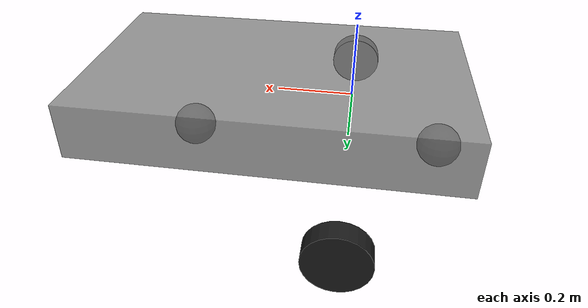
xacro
<?xml version="1.0"?>
<robot xmlns:xacro="http://www.ros.org/wiki/xacro" name="agv">

  <!-- Calibrated parameters (2026-04-08). Do not change without re-measuring. -->
  <xacro:arg name="wheel_radius"   default="0.0781"/>
  <xacro:arg name="left_wheel_y"   default="0.480"/>
  <xacro:arg name="right_wheel_y"  default="-0.480"/>
  <xacro:arg name="wheel_z"        default="-0.1219"/>
  <xacro:arg name="wheel_width"    default="0.05"/>

  <xacro:include filename="$(find agv_isaac_sim)/urdf/agv_base.xacro"/>
  <xacro:include filename="$(find agv_isaac_sim)/urdf/wheel.xacro"/>
  <xacro:include filename="$(find agv_isaac_sim)/urdf/caster.xacro"/>

  <xacro:wheel
    name="left"
    x="0"
    y="$(arg left_wheel_y)"
    z="$(arg wheel_z)"
    radius="$(arg wheel_radius)"
    width="$(arg wheel_width)"/>

  <xacro:wheel
    name="right"
    x="0"
    y="$(arg right_wheel_y)"
    z="$(arg wheel_z)"
    radius="$(arg wheel_radius)"
    width="$(arg wheel_width)"/>

  <xacro:caster name="front" x="0.45" y="0" radius="0.06"/>
  <xacro:caster name="rear"  x="-0.25" y="0" radius="0.06"/>

</robot>

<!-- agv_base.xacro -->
<!--
  Chassis + base_footprint. Dimensions and mass mirror the brain URDF
  (src/agv_description/urdf/agv_base.xacro in agv-greenhouse).
-->
<robot xmlns:xacro="http://www.ros.org/wiki/xacro">

  <xacro:property name="chassis_length" value="1.0"/>
  <xacro:property name="chassis_width"  value="0.6"/>
  <xacro:property name="chassis_height" value="0.15"/>

  <link name="base_link">
    <visual>
      <origin xyz="0.2 0 0" rpy="0 0 0"/>
      <geometry>
        <box size="${chassis_length} ${chassis_width} ${chassis_height}"/>
      </geometry>
      <material name="chassis_grey">
        <color rgba="0.5 0.5 0.5 0.8"/>
      </material>
    </visual>
    <collision>
      <origin xyz="0.2 0 0" rpy="0 0 0"/>
      <geometry>
        <box size="${chassis_length} ${chassis_width} ${chassis_height}"/>
      </geometry>
    </collision>
    <inertial>
      <mass value="30.0"/>
      <origin xyz="0.2 0 0"/>
      <inertia ixx="1.0" ixy="0" ixz="0" iyy="1.0" iyz="0" izz="1.0"/>
    </inertial>
  </link>

  <!-- base_footprint at ground level. Fixed z matches brain URDF. -->
  <link name="base_footprint"/>

  <joint name="base_footprint_joint" type="fixed">
    <parent link="base_link"/>
    <child  link="base_footprint"/>
    <origin xyz="0 0 -0.200" rpy="0 0 0"/>
  </joint>

</robot>

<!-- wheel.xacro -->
<!--
  Wheel macro — continuous joint driven by Isaac's DifferentialController.
  Matches the brain URDF macro (src/agv_description/urdf/wheel.xacro).
-->
<robot xmlns:xacro="http://www.ros.org/wiki/xacro">

  <xacro:macro name="wheel" params="name x y z radius width">
    <link name="${name}_wheel">
      <visual>
        <geometry>
          <cylinder radius="${radius}" length="${width}"/>
        </geometry>
        <material name="wheel_black">
          <color rgba="0.1 0.1 0.1 1.0"/>
        </material>
      </visual>
      <collision>
        <geometry>
          <cylinder radius="${radius}" length="${width}"/>
        </geometry>
      </collision>
      <inertial>
        <mass value="2.0"/>
        <inertia ixx="0.002" ixy="0" ixz="0" iyy="0.002" iyz="0" izz="0.002"/>
      </inertial>
    </link>

    <joint name="${name}_wheel_joint" type="continuous">
      <parent link="base_link"/>
      <child  link="${name}_wheel"/>
      <origin xyz="${x} ${y} ${z}" rpy="${-pi/2} 0 0"/>
      <axis xyz="0 0 1"/>
    </joint>
  </xacro:macro>

</robot>

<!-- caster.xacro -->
<robot xmlns:xacro="http://www.ros.org/wiki/xacro">

  <xacro:macro name="caster" params="name x y radius">
    <link name="${name}_caster">
      <visual>
        <geometry>
          <sphere radius="${radius}"/>
        </geometry>
        <material name="caster_grey">
          <color rgba="0.3 0.3 0.3 1.0"/>
        </material>
      </visual>
      <collision>
        <geometry>
          <sphere radius="${radius}"/>
        </geometry>
      </collision>
      <inertial>
        <mass value="1.0"/>
        <inertia ixx="0.00144" ixy="0" ixz="0" iyy="0.00144" iyz="0" izz="0.00144"/>
      </inertial>
    </link>

    <joint name="${name}_caster_joint" type="fixed">
      <parent link="base_link"/>
      <child  link="${name}_caster"/>
      <origin xyz="${x} ${y} ${-0.20 + radius}" rpy="0 0 0"/>
    </joint>
  </xacro:macro>

</robot>
